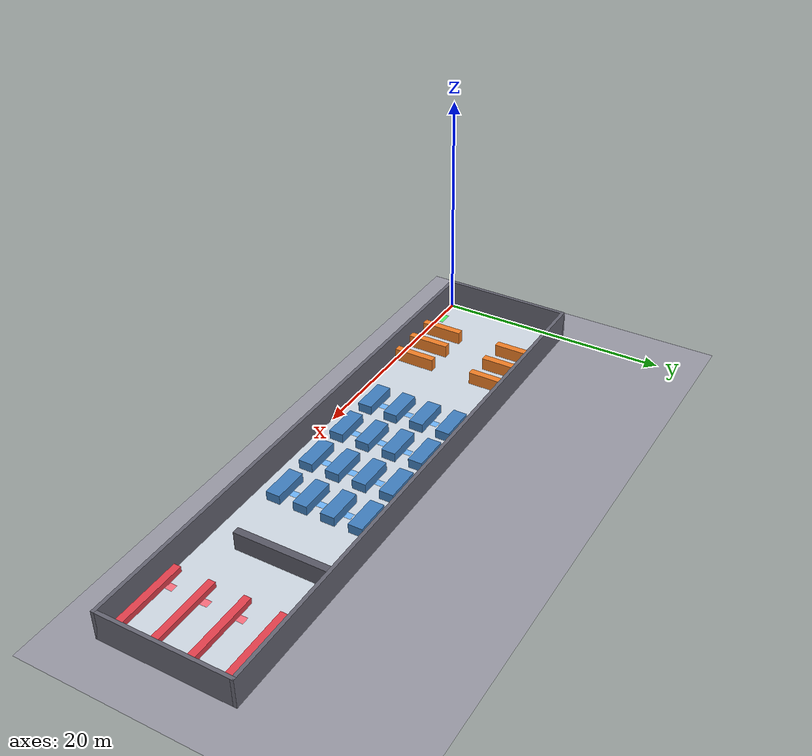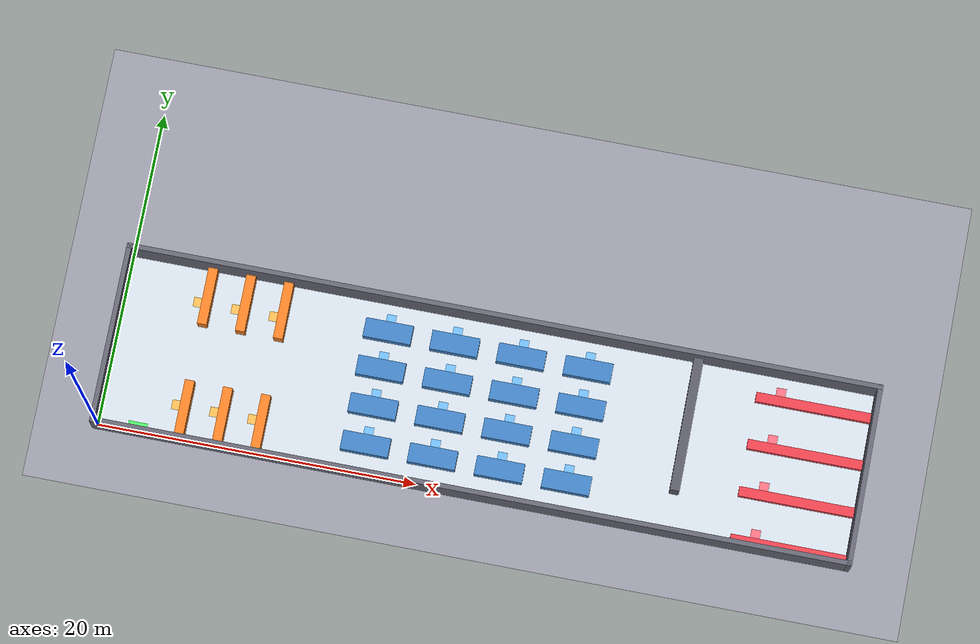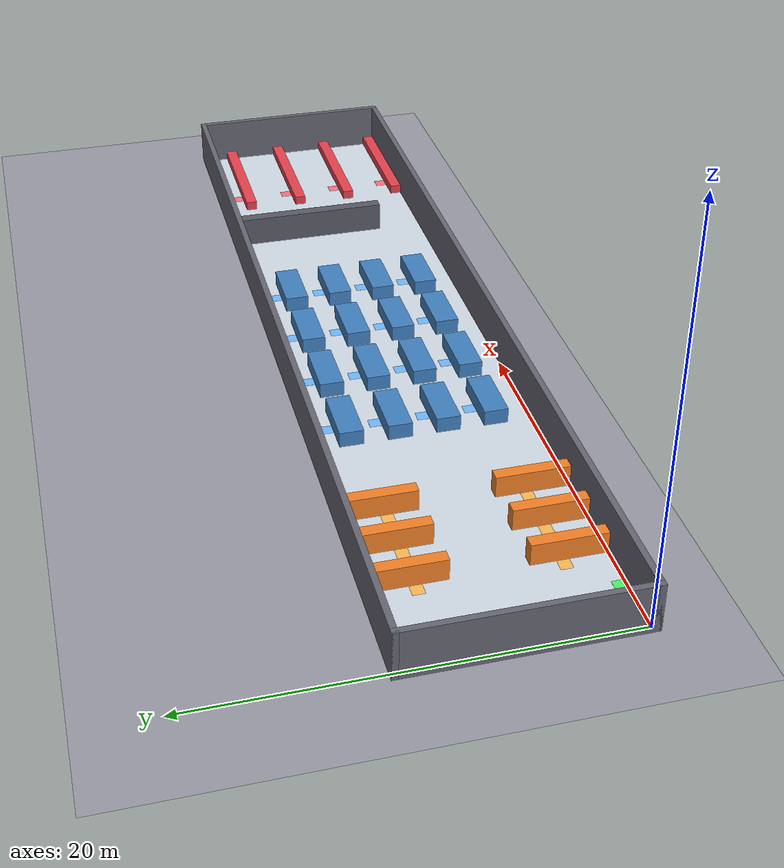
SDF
<?xml version="1.0" ?>
<sdf version="1.6">
  <world name="lsm_custom_warehouse">

    <!-- Scene settings (Disable default 1.0m world grid) -->
    <scene>
      <grid>false</grid>
    </scene>

    <!-- GUI Camera Default View focused on Charging Pad (-21.0, -5.1) -->
    <gui fullscreen='0'>
      <camera name='user_camera'>
        <pose>2.4 -4.6 5.0 0.0 0.5 1.57</pose>
      </camera>
    </gui>

    <!-- Gazebo Sim Core System Plugins -->
    <plugin filename="gz-sim-physics-system" name="gz::sim::systems::Physics"/>
    <plugin filename="gz-sim-user-commands-system" name="gz::sim::systems::UserCommands"/>
    <plugin filename="gz-sim-scene-broadcaster-system" name="gz::sim::systems::SceneBroadcaster"/>
    <plugin filename="gz-sim-sensors-system" name="gz::sim::systems::Sensors">
      <render_engine>ogre2</render_engine>
    </plugin>
    <plugin filename="gz-sim-imu-system" name="gz::sim::systems::Imu"/>

    <!-- Physics engine settings -->
    <physics default="0" name="default_physics" type="ode">
      <max_step_size>0.001</max_step_size>
      <real_time_factor>1.0</real_time_factor>
      <real_time_update_rate>1000.0</real_time_update_rate>
    </physics>

    <gravity>0 0 -9.8</gravity>

    <!-- Sun Light -->
    <light type="directional" name="sun">
      <cast_shadows>true</cast_shadows>
      <pose>23.4 5.4 25.0 0.0 0.0 0.0</pose>
      <diffuse>0.9 0.9 0.9 1</diffuse>
      <specular>0.3 0.3 0.3 1</specular>
      <direction>-0.5 0.1 -0.9</direction>
    </light>

    <!-- Ground Plane (무한 바닥) -->
    <model name="ground_plane">
      <static>true</static>
      <link name="link">
        <collision name="collision">
          <geometry>
            <plane>
              <normal>0 0 1</normal>
              <size>100 60</size>
            </plane>
          </geometry>
        </collision>
        <visual name="visual">
          <geometry>
            <plane>
              <normal>0 0 1</normal>
              <size>100 60</size>
            </plane>
          </geometry>
          <material>
            <ambient>0.55 0.55 0.6 1</ambient>
            <diffuse>0.6 0.6 0.65 1</diffuse>
          </material>
        </visual>
      </link>
    </model>

    <!-- WAREHOUSE INDUSTRIAL EPOXY FLOOR (창고 내부 46.8m x 10.8m 전용 에폭시 바닥) -->
    <model name="warehouse_floor">
      <static>true</static>
      <pose>23.4 5.4 0.005 0.0 0.0 0.0</pose>
      <link name="link">
        <collision name="col">
          <geometry><box><size>46.8 10.8 0.01</size></box></geometry>
        </collision>
        <visual name="vis">
          <geometry><box><size>46.8 10.8 0.01</size></box></geometry>
          <material>
            <ambient>0.78 0.82 0.86 1</ambient>
            <diffuse>0.82 0.86 0.90 1</diffuse>
          </material>
        </visual>
      </link>
    </model>

    <!-- WAREHOUSE OUTER WALLS (회색 단색 깔끔한 외벽 - 높이 2.5m) -->
    <model name="wall_north">
      <static>true</static>
      <pose>23.4 10.95 1.25 0.0 0.0 0.0</pose>
      <link name="link">
        <collision name="col"><geometry><box><size>47.4 0.3 2.5</size></box></geometry></collision>
        <visual name="vis"><geometry><box><size>47.4 0.3 2.5</size></box></geometry>
          <material><ambient>0.3 0.3 0.35 1</ambient><diffuse>0.4 0.4 0.45 1</diffuse></material>
        </visual>
      </link>
    </model>

    <model name="wall_south">
      <static>true</static>
      <pose>23.4 -0.15 1.25 0.0 0.0 0.0</pose>
      <link name="link">
        <collision name="col"><geometry><box><size>47.4 0.3 2.5</size></box></geometry></collision>
        <visual name="vis"><geometry><box><size>47.4 0.3 2.5</size></box></geometry>
          <material><ambient>0.3 0.3 0.35 1</ambient><diffuse>0.4 0.4 0.45 1</diffuse></material>
        </visual>
      </link>
    </model>

    <model name="wall_west">
      <static>true</static>
      <pose>-0.15 5.4 1.25 0.0 0.0 0.0</pose>
      <link name="link">
        <collision name="col"><geometry><box><size>0.3 11.4 2.5</size></box></geometry></collision>
        <visual name="vis"><geometry><box><size>0.3 11.4 2.5</size></box></geometry>
          <material><ambient>0.3 0.3 0.35 1</ambient><diffuse>0.4 0.4 0.45 1</diffuse></material>
        </visual>
      </link>
    </model>

    <model name="wall_east">
      <static>true</static>
      <pose>46.95 5.4 1.25 0.0 0.0 0.0</pose>
      <link name="link">
        <collision name="col"><geometry><box><size>0.3 11.4 2.5</size></box></geometry></collision>
        <visual name="vis"><geometry><box><size>0.3 11.4 2.5</size></box></geometry>
          <material><ambient>0.3 0.3 0.35 1</ambient><diffuse>0.4 0.4 0.45 1</diffuse></material>
        </visual>
      </link>
    </model>

    <!-- 충전소 구역 표시 마킹 (Flat 2D Floor Zone Decal: 높이 0.002m / Lime Green) -->
    <model name="lower_left_centered_charging_pad">
      <static>true</static>
      <pose>2.4 0.3 0.0105 0.0 0.0 0.0</pose>
      <link name="link">
        <visual name="vis"><geometry><box><size>1.2 0.6 0.002</size></box></geometry>
          <material><ambient>0.2 0.85 0.3 1</ambient><diffuse>0.3 0.95 0.4 1</diffuse></material>
        </visual>
      </link>
    </model>

    <!-- LEFT AREA: A-ZONE 6 GATES (Safety Orange: 단색 블록, 높이 1.1m) -->
    <model name="gate_top_1">
      <static>true</static>
      <pose>5.1 9.0 0.55 0.0 0.0 0.0</pose>
      <link name="link">
        <collision name="col"><geometry><box><size>0.6 3.6 1.1</size></box></geometry></collision>
        <visual name="vis"><geometry><box><size>0.6 3.6 1.1</size></box></geometry>
          <material><ambient>0.9 0.45 0.1 1</ambient><diffuse>0.95 0.5 0.15 1</diffuse></material>
        </visual>
      </link>
    </model>

    <model name="gate_top_2">
      <static>true</static>
      <pose>7.5 9.0 0.55 0.0 0.0 0.0</pose>
      <link name="link">
        <collision name="col"><geometry><box><size>0.6 3.6 1.1</size></box></geometry></collision>
        <visual name="vis"><geometry><box><size>0.6 3.6 1.1</size></box></geometry>
          <material><ambient>0.9 0.45 0.1 1</ambient><diffuse>0.95 0.5 0.15 1</diffuse></material>
        </visual>
      </link>
    </model>

    <model name="gate_top_3">
      <static>true</static>
      <pose>9.9 9.0 0.55 0.0 0.0 0.0</pose>
      <link name="link">
        <collision name="col"><geometry><box><size>0.6 3.6 1.1</size></box></geometry></collision>
        <visual name="vis"><geometry><box><size>0.6 3.6 1.1</size></box></geometry>
          <material><ambient>0.9 0.45 0.1 1</ambient><diffuse>0.95 0.5 0.15 1</diffuse></material>
        </visual>
      </link>
    </model>

    <model name="gate_bot_1">
      <static>true</static>
      <pose>5.1 1.8 0.55 0.0 0.0 0.0</pose>
      <link name="link">
        <collision name="col"><geometry><box><size>0.6 3.6 1.1</size></box></geometry></collision>
        <visual name="vis"><geometry><box><size>0.6 3.6 1.1</size></box></geometry>
          <material><ambient>0.9 0.45 0.1 1</ambient><diffuse>0.95 0.5 0.15 1</diffuse></material>
        </visual>
      </link>
    </model>

    <model name="gate_bot_2">
      <static>true</static>
      <pose>7.5 1.8 0.55 0.0 0.0 0.0</pose>
      <link name="link">
        <collision name="col"><geometry><box><size>0.6 3.6 1.1</size></box></geometry></collision>
        <visual name="vis"><geometry><box><size>0.6 3.6 1.1</size></box></geometry>
          <material><ambient>0.9 0.45 0.1 1</ambient><diffuse>0.95 0.5 0.15 1</diffuse></material>
        </visual>
      </link>
    </model>

    <model name="gate_bot_3">
      <static>true</static>
      <pose>9.9 1.8 0.55 0.0 0.0 0.0</pose>
      <link name="link">
        <collision name="col"><geometry><box><size>0.6 3.6 1.1</size></box></geometry></collision>
        <visual name="vis"><geometry><box><size>0.6 3.6 1.1</size></box></geometry>
          <material><ambient>0.9 0.45 0.1 1</ambient><diffuse>0.95 0.5 0.15 1</diffuse></material>
        </visual>
      </link>
    </model>

    <!-- CENTER AREA: B-ZONE 16 CELL BLOCKS (Steel Blue: 단색 깔끔한 블록, 높이 0.8m) -->
    <model name="block_1_1">
      <static>true</static>
      <pose>16.5 9.0 0.4 0.0 0.0 0.0</pose>
      <link name="link">
        <collision name="col"><geometry><box><size>3.0 1.2 0.8</size></box></geometry></collision>
        <visual name="vis"><geometry><box><size>3.0 1.2 0.8</size></box></geometry>
          <material><ambient>0.2 0.45 0.7 1</ambient><diffuse>0.25 0.5 0.75 1</diffuse></material>
        </visual>
      </link>
    </model>
    <model name="block_1_2">
      <static>true</static>
      <pose>20.7 9.0 0.4 0.0 0.0 0.0</pose>
      <link name="link">
        <collision name="col"><geometry><box><size>3.0 1.2 0.8</size></box></geometry></collision>
        <visual name="vis"><geometry><box><size>3.0 1.2 0.8</size></box></geometry>
          <material><ambient>0.2 0.45 0.7 1</ambient><diffuse>0.25 0.5 0.75 1</diffuse></material>
        </visual>
      </link>
    </model>
    <model name="block_1_3">
      <static>true</static>
      <pose>24.9 9.0 0.4 0.0 0.0 0.0</pose>
      <link name="link">
        <collision name="col"><geometry><box><size>3.0 1.2 0.8</size></box></geometry></collision>
        <visual name="vis"><geometry><box><size>3.0 1.2 0.8</size></box></geometry>
          <material><ambient>0.2 0.45 0.7 1</ambient><diffuse>0.25 0.5 0.75 1</diffuse></material>
        </visual>
      </link>
    </model>
    <model name="block_1_4">
      <static>true</static>
      <pose>29.1 9.0 0.4 0.0 0.0 0.0</pose>
      <link name="link">
        <collision name="col"><geometry><box><size>3.0 1.2 0.8</size></box></geometry></collision>
        <visual name="vis"><geometry><box><size>3.0 1.2 0.8</size></box></geometry>
          <material><ambient>0.2 0.45 0.7 1</ambient><diffuse>0.25 0.5 0.75 1</diffuse></material>
        </visual>
      </link>
    </model>
    <model name="block_2_1">
      <static>true</static>
      <pose>16.5 6.6 0.4 0.0 0.0 0.0</pose>
      <link name="link">
        <collision name="col"><geometry><box><size>3.0 1.2 0.8</size></box></geometry></collision>
        <visual name="vis"><geometry><box><size>3.0 1.2 0.8</size></box></geometry>
          <material><ambient>0.2 0.45 0.7 1</ambient><diffuse>0.25 0.5 0.75 1</diffuse></material>
        </visual>
      </link>
    </model>
    <model name="block_2_2">
      <static>true</static>
      <pose>20.7 6.6 0.4 0.0 0.0 0.0</pose>
      <link name="link">
        <collision name="col"><geometry><box><size>3.0 1.2 0.8</size></box></geometry></collision>
        <visual name="vis"><geometry><box><size>3.0 1.2 0.8</size></box></geometry>
          <material><ambient>0.2 0.45 0.7 1</ambient><diffuse>0.25 0.5 0.75 1</diffuse></material>
        </visual>
      </link>
    </model>
    <model name="block_2_3">
      <static>true</static>
      <pose>24.9 6.6 0.4 0.0 0.0 0.0</pose>
      <link name="link">
        <collision name="col"><geometry><box><size>3.0 1.2 0.8</size></box></geometry></collision>
        <visual name="vis"><geometry><box><size>3.0 1.2 0.8</size></box></geometry>
          <material><ambient>0.2 0.45 0.7 1</ambient><diffuse>0.25 0.5 0.75 1</diffuse></material>
        </visual>
      </link>
    </model>
    <model name="block_2_4">
      <static>true</static>
      <pose>29.1 6.6 0.4 0.0 0.0 0.0</pose>
      <link name="link">
        <collision name="col"><geometry><box><size>3.0 1.2 0.8</size></box></geometry></collision>
        <visual name="vis"><geometry><box><size>3.0 1.2 0.8</size></box></geometry>
          <material><ambient>0.2 0.45 0.7 1</ambient><diffuse>0.25 0.5 0.75 1</diffuse></material>
        </visual>
      </link>
    </model>
    <model name="block_3_1">
      <static>true</static>
      <pose>16.5 4.2 0.4 0.0 0.0 0.0</pose>
      <link name="link">
        <collision name="col"><geometry><box><size>3.0 1.2 0.8</size></box></geometry></collision>
        <visual name="vis"><geometry><box><size>3.0 1.2 0.8</size></box></geometry>
          <material><ambient>0.2 0.45 0.7 1</ambient><diffuse>0.25 0.5 0.75 1</diffuse></material>
        </visual>
      </link>
    </model>
    <model name="block_3_2">
      <static>true</static>
      <pose>20.7 4.2 0.4 0.0 0.0 0.0</pose>
      <link name="link">
        <collision name="col"><geometry><box><size>3.0 1.2 0.8</size></box></geometry></collision>
        <visual name="vis"><geometry><box><size>3.0 1.2 0.8</size></box></geometry>
          <material><ambient>0.2 0.45 0.7 1</ambient><diffuse>0.25 0.5 0.75 1</diffuse></material>
        </visual>
      </link>
    </model>
    <model name="block_3_3">
      <static>true</static>
      <pose>24.9 4.2 0.4 0.0 0.0 0.0</pose>
      <link name="link">
        <collision name="col"><geometry><box><size>3.0 1.2 0.8</size></box></geometry></collision>
        <visual name="vis"><geometry><box><size>3.0 1.2 0.8</size></box></geometry>
          <material><ambient>0.2 0.45 0.7 1</ambient><diffuse>0.25 0.5 0.75 1</diffuse></material>
        </visual>
      </link>
    </model>
    <model name="block_3_4">
      <static>true</static>
      <pose>29.1 4.2 0.4 0.0 0.0 0.0</pose>
      <link name="link">
        <collision name="col"><geometry><box><size>3.0 1.2 0.8</size></box></geometry></collision>
        <visual name="vis"><geometry><box><size>3.0 1.2 0.8</size></box></geometry>
          <material><ambient>0.2 0.45 0.7 1</ambient><diffuse>0.25 0.5 0.75 1</diffuse></material>
        </visual>
      </link>
    </model>
    <model name="block_4_1">
      <static>true</static>
      <pose>16.5 1.8 0.4 0.0 0.0 0.0</pose>
      <link name="link">
        <collision name="col"><geometry><box><size>3.0 1.2 0.8</size></box></geometry></collision>
        <visual name="vis"><geometry><box><size>3.0 1.2 0.8</size></box></geometry>
          <material><ambient>0.2 0.45 0.7 1</ambient><diffuse>0.25 0.5 0.75 1</diffuse></material>
        </visual>
      </link>
    </model>
    <model name="block_4_2">
      <static>true</static>
      <pose>20.7 1.8 0.4 0.0 0.0 0.0</pose>
      <link name="link">
        <collision name="col"><geometry><box><size>3.0 1.2 0.8</size></box></geometry></collision>
        <visual name="vis"><geometry><box><size>3.0 1.2 0.8</size></box></geometry>
          <material><ambient>0.2 0.45 0.7 1</ambient><diffuse>0.25 0.5 0.75 1</diffuse></material>
        </visual>
      </link>
    </model>
    <model name="block_4_3">
      <static>true</static>
      <pose>24.9 1.8 0.4 0.0 0.0 0.0</pose>
      <link name="link">
        <collision name="col"><geometry><box><size>3.0 1.2 0.8</size></box></geometry></collision>
        <visual name="vis"><geometry><box><size>3.0 1.2 0.8</size></box></geometry>
          <material><ambient>0.2 0.45 0.7 1</ambient><diffuse>0.25 0.5 0.75 1</diffuse></material>
        </visual>
      </link>
    </model>
    <model name="block_4_4">
      <static>true</static>
      <pose>29.1 1.8 0.4 0.0 0.0 0.0</pose>
      <link name="link">
        <collision name="col"><geometry><box><size>3.0 1.2 0.8</size></box></geometry></collision>
        <visual name="vis"><geometry><box><size>3.0 1.2 0.8</size></box></geometry>
          <material><ambient>0.2 0.45 0.7 1</ambient><diffuse>0.25 0.5 0.75 1</diffuse></material>
        </visual>
      </link>
    </model>

    <!-- RIGHT AREA: DIVIDER WALL (높이 1.6m) & C-ZONE 4 LINES (Crimson Red: 단색 블록, 높이 0.5m) -->
    <model name="vertical_divider_wall">
      <static>true</static>
      <pose>35.7 6.6 0.8 0.0 0.0 0.0</pose>
      <link name="link">
        <collision name="col"><geometry><box><size>0.6 8.4 1.6</size></box></geometry></collision>
        <visual name="vis"><geometry><box><size>0.6 8.4 1.6</size></box></geometry>
          <material><ambient>0.25 0.25 0.3 1</ambient><diffuse>0.35 0.35 0.4 1</diffuse></material>
        </visual>
      </link>
    </model>

    <!-- C-Zone 출고/하역 블록 (Crimson Red) -->
    <model name="horizontal_line_1">
      <static>true</static>
      <pose>43.2 9.3 0.25 0.0 0.0 0.0</pose>
      <link name="link">
        <collision name="col"><geometry><box><size>7.2 0.6 0.5</size></box></geometry></collision>
        <visual name="vis"><geometry><box><size>7.2 0.6 0.5</size></box></geometry>
          <material><ambient>0.85 0.2 0.25 1</ambient><diffuse>0.9 0.25 0.3 1</diffuse></material>
        </visual>
      </link>
    </model>

    <model name="horizontal_line_2">
      <static>true</static>
      <pose>43.2 6.3 0.25 0.0 0.0 0.0</pose>
      <link name="link">
        <collision name="col"><geometry><box><size>7.2 0.6 0.5</size></box></geometry></collision>
        <visual name="vis"><geometry><box><size>7.2 0.6 0.5</size></box></geometry>
          <material><ambient>0.85 0.2 0.25 1</ambient><diffuse>0.9 0.25 0.3 1</diffuse></material>
        </visual>
      </link>
    </model>

    <model name="horizontal_line_3">
      <static>true</static>
      <pose>43.2 3.3 0.25 0.0 0.0 0.0</pose>
      <link name="link">
        <collision name="col"><geometry><box><size>7.2 0.6 0.5</size></box></geometry></collision>
        <visual name="vis"><geometry><box><size>7.2 0.6 0.5</size></box></geometry>
          <material><ambient>0.85 0.2 0.25 1</ambient><diffuse>0.9 0.25 0.3 1</diffuse></material>
        </visual>
      </link>
    </model>

    <model name="horizontal_line_4">
      <static>true</static>
      <pose>43.2 0.3 0.25 0.0 0.0 0.0</pose>
      <link name="link">
        <collision name="col"><geometry><box><size>7.2 0.6 0.5</size></box></geometry></collision>
        <visual name="vis"><geometry><box><size>7.2 0.6 0.5</size></box></geometry>
          <material><ambient>0.85 0.2 0.25 1</ambient><diffuse>0.9 0.25 0.3 1</diffuse></material>
        </visual>
      </link>
    </model>

    <!-- NEW: 26 AMR WAYPOINT STOP SPOTS (0.6m x 0.6m Flat Floor Decals) -->
    <model name="spot_a_top_1">
      <static>true</static>
      <pose>4.5 8.7 0.0105 0.0 0.0 0.0</pose>
      <link name="link">
        <visual name="vis"><geometry><box><size>0.6 0.6 0.002</size></box></geometry>
          <material><ambient>0.9 0.65 0.3 1</ambient><diffuse>0.99 0.72 0.33 1</diffuse></material>
        </visual>
      </link>
    </model>
    <model name="spot_a_top_2">
      <static>true</static>
      <pose>6.9 8.7 0.0105 0.0 0.0 0.0</pose>
      <link name="link">
        <visual name="vis"><geometry><box><size>0.6 0.6 0.002</size></box></geometry>
          <material><ambient>0.9 0.65 0.3 1</ambient><diffuse>0.99 0.72 0.33 1</diffuse></material>
        </visual>
      </link>
    </model>
    <model name="spot_a_top_3">
      <static>true</static>
      <pose>9.3 8.7 0.0105 0.0 0.0 0.0</pose>
      <link name="link">
        <visual name="vis"><geometry><box><size>0.6 0.6 0.002</size></box></geometry>
          <material><ambient>0.9 0.65 0.3 1</ambient><diffuse>0.99 0.72 0.33 1</diffuse></material>
        </visual>
      </link>
    </model>
    <model name="spot_a_bot_1">
      <static>true</static>
      <pose>4.5 2.1 0.0105 0.0 0.0 0.0</pose>
      <link name="link">
        <visual name="vis"><geometry><box><size>0.6 0.6 0.002</size></box></geometry>
          <material><ambient>0.9 0.65 0.3 1</ambient><diffuse>0.99 0.72 0.33 1</diffuse></material>
        </visual>
      </link>
    </model>
    <model name="spot_a_bot_2">
      <static>true</static>
      <pose>6.9 2.1 0.0105 0.0 0.0 0.0</pose>
      <link name="link">
        <visual name="vis"><geometry><box><size>0.6 0.6 0.002</size></box></geometry>
          <material><ambient>0.9 0.65 0.3 1</ambient><diffuse>0.99 0.72 0.33 1</diffuse></material>
        </visual>
      </link>
    </model>
    <model name="spot_a_bot_3">
      <static>true</static>
      <pose>9.3 2.1 0.0105 0.0 0.0 0.0</pose>
      <link name="link">
        <visual name="vis"><geometry><box><size>0.6 0.6 0.002</size></box></geometry>
          <material><ambient>0.9 0.65 0.3 1</ambient><diffuse>0.99 0.72 0.33 1</diffuse></material>
        </visual>
      </link>
    </model>
    <model name="spot_b_1_1">
      <static>true</static>
      <pose>16.5 9.9 0.0105 0.0 0.0 0.0</pose>
      <link name="link">
        <visual name="vis"><geometry><box><size>0.6 0.6 0.002</size></box></geometry>
          <material><ambient>0.4 0.65 0.9 1</ambient><diffuse>0.44 0.72 0.99 1</diffuse></material>
        </visual>
      </link>
    </model>
    <model name="spot_b_1_2">
      <static>true</static>
      <pose>20.7 9.9 0.0105 0.0 0.0 0.0</pose>
      <link name="link">
        <visual name="vis"><geometry><box><size>0.6 0.6 0.002</size></box></geometry>
          <material><ambient>0.4 0.65 0.9 1</ambient><diffuse>0.44 0.72 0.99 1</diffuse></material>
        </visual>
      </link>
    </model>
    <model name="spot_b_1_3">
      <static>true</static>
      <pose>24.9 9.9 0.0105 0.0 0.0 0.0</pose>
      <link name="link">
        <visual name="vis"><geometry><box><size>0.6 0.6 0.002</size></box></geometry>
          <material><ambient>0.4 0.65 0.9 1</ambient><diffuse>0.44 0.72 0.99 1</diffuse></material>
        </visual>
      </link>
    </model>
    <model name="spot_b_1_4">
      <static>true</static>
      <pose>29.1 9.9 0.0105 0.0 0.0 0.0</pose>
      <link name="link">
        <visual name="vis"><geometry><box><size>0.6 0.6 0.002</size></box></geometry>
          <material><ambient>0.4 0.65 0.9 1</ambient><diffuse>0.44 0.72 0.99 1</diffuse></material>
        </visual>
      </link>
    </model>
    <model name="spot_b_2_1">
      <static>true</static>
      <pose>16.5 7.5 0.0105 0.0 0.0 0.0</pose>
      <link name="link">
        <visual name="vis"><geometry><box><size>0.6 0.6 0.002</size></box></geometry>
          <material><ambient>0.4 0.65 0.9 1</ambient><diffuse>0.44 0.72 0.99 1</diffuse></material>
        </visual>
      </link>
    </model>
    <model name="spot_b_2_2">
      <static>true</static>
      <pose>20.7 7.5 0.0105 0.0 0.0 0.0</pose>
      <link name="link">
        <visual name="vis"><geometry><box><size>0.6 0.6 0.002</size></box></geometry>
          <material><ambient>0.4 0.65 0.9 1</ambient><diffuse>0.44 0.72 0.99 1</diffuse></material>
        </visual>
      </link>
    </model>
    <model name="spot_b_2_3">
      <static>true</static>
      <pose>24.9 7.5 0.0105 0.0 0.0 0.0</pose>
      <link name="link">
        <visual name="vis"><geometry><box><size>0.6 0.6 0.002</size></box></geometry>
          <material><ambient>0.4 0.65 0.9 1</ambient><diffuse>0.44 0.72 0.99 1</diffuse></material>
        </visual>
      </link>
    </model>
    <model name="spot_b_2_4">
      <static>true</static>
      <pose>29.1 7.5 0.0105 0.0 0.0 0.0</pose>
      <link name="link">
        <visual name="vis"><geometry><box><size>0.6 0.6 0.002</size></box></geometry>
          <material><ambient>0.4 0.65 0.9 1</ambient><diffuse>0.44 0.72 0.99 1</diffuse></material>
        </visual>
      </link>
    </model>
    <model name="spot_b_3_1">
      <static>true</static>
      <pose>16.5 5.1 0.0105 0.0 0.0 0.0</pose>
      <link name="link">
        <visual name="vis"><geometry><box><size>0.6 0.6 0.002</size></box></geometry>
          <material><ambient>0.4 0.65 0.9 1</ambient><diffuse>0.44 0.72 0.99 1</diffuse></material>
        </visual>
      </link>
    </model>
    <model name="spot_b_3_2">
      <static>true</static>
      <pose>20.7 5.1 0.0105 0.0 0.0 0.0</pose>
      <link name="link">
        <visual name="vis"><geometry><box><size>0.6 0.6 0.002</size></box></geometry>
          <material><ambient>0.4 0.65 0.9 1</ambient><diffuse>0.44 0.72 0.99 1</diffuse></material>
        </visual>
      </link>
    </model>
    <model name="spot_b_3_3">
      <static>true</static>
      <pose>24.9 5.1 0.0105 0.0 0.0 0.0</pose>
      <link name="link">
        <visual name="vis"><geometry><box><size>0.6 0.6 0.002</size></box></geometry>
          <material><ambient>0.4 0.65 0.9 1</ambient><diffuse>0.44 0.72 0.99 1</diffuse></material>
        </visual>
      </link>
    </model>
    <model name="spot_b_3_4">
      <static>true</static>
      <pose>29.1 5.1 0.0105 0.0 0.0 0.0</pose>
      <link name="link">
        <visual name="vis"><geometry><box><size>0.6 0.6 0.002</size></box></geometry>
          <material><ambient>0.4 0.65 0.9 1</ambient><diffuse>0.44 0.72 0.99 1</diffuse></material>
        </visual>
      </link>
    </model>
    <model name="spot_b_4_1">
      <static>true</static>
      <pose>16.5 2.7 0.0105 0.0 0.0 0.0</pose>
      <link name="link">
        <visual name="vis"><geometry><box><size>0.6 0.6 0.002</size></box></geometry>
          <material><ambient>0.4 0.65 0.9 1</ambient><diffuse>0.44 0.72 0.99 1</diffuse></material>
        </visual>
      </link>
    </model>
    <model name="spot_b_4_2">
      <static>true</static>
      <pose>20.7 2.7 0.0105 0.0 0.0 0.0</pose>
      <link name="link">
        <visual name="vis"><geometry><box><size>0.6 0.6 0.002</size></box></geometry>
          <material><ambient>0.4 0.65 0.9 1</ambient><diffuse>0.44 0.72 0.99 1</diffuse></material>
        </visual>
      </link>
    </model>
    <model name="spot_b_4_3">
      <static>true</static>
      <pose>24.9 2.7 0.0105 0.0 0.0 0.0</pose>
      <link name="link">
        <visual name="vis"><geometry><box><size>0.6 0.6 0.002</size></box></geometry>
          <material><ambient>0.4 0.65 0.9 1</ambient><diffuse>0.44 0.72 0.99 1</diffuse></material>
        </visual>
      </link>
    </model>
    <model name="spot_b_4_4">
      <static>true</static>
      <pose>29.1 2.7 0.0105 0.0 0.0 0.0</pose>
      <link name="link">
        <visual name="vis"><geometry><box><size>0.6 0.6 0.002</size></box></geometry>
          <material><ambient>0.4 0.65 0.9 1</ambient><diffuse>0.44 0.72 0.99 1</diffuse></material>
        </visual>
      </link>
    </model>
    <model name="spot_c_1">
      <static>true</static>
      <pose>41.1 9.9 0.0105 0.0 0.0 0.0</pose>
      <link name="link">
        <visual name="vis"><geometry><box><size>0.6 0.6 0.002</size></box></geometry>
          <material><ambient>0.9 0.4 0.45 1</ambient><diffuse>0.99 0.44 0.50 1</diffuse></material>
        </visual>
      </link>
    </model>
    <model name="spot_c_2">
      <static>true</static>
      <pose>41.1 6.9 0.0105 0.0 0.0 0.0</pose>
      <link name="link">
        <visual name="vis"><geometry><box><size>0.6 0.6 0.002</size></box></geometry>
          <material><ambient>0.9 0.4 0.45 1</ambient><diffuse>0.99 0.44 0.50 1</diffuse></material>
        </visual>
      </link>
    </model>
    <model name="spot_c_3">
      <static>true</static>
      <pose>41.1 3.9 0.0105 0.0 0.0 0.0</pose>
      <link name="link">
        <visual name="vis"><geometry><box><size>0.6 0.6 0.002</size></box></geometry>
          <material><ambient>0.9 0.4 0.45 1</ambient><diffuse>0.99 0.44 0.50 1</diffuse></material>
        </visual>
      </link>
    </model>
    <model name="spot_c_4">
      <static>true</static>
      <pose>41.1 0.9 0.0105 0.0 0.0 0.0</pose>
      <link name="link">
        <visual name="vis"><geometry><box><size>0.6 0.6 0.002</size></box></geometry>
          <material><ambient>0.9 0.4 0.45 1</ambient><diffuse>0.99 0.44 0.50 1</diffuse></material>
        </visual>
      </link>
    </model>

  </world>
</sdf>
